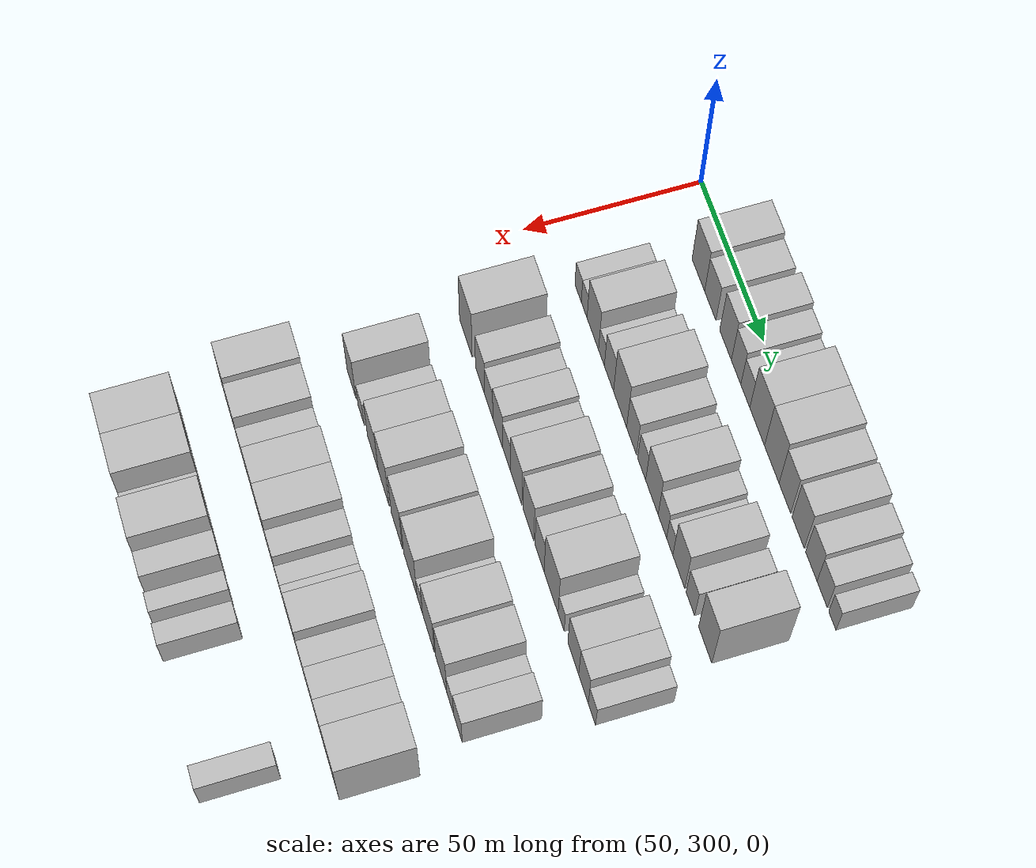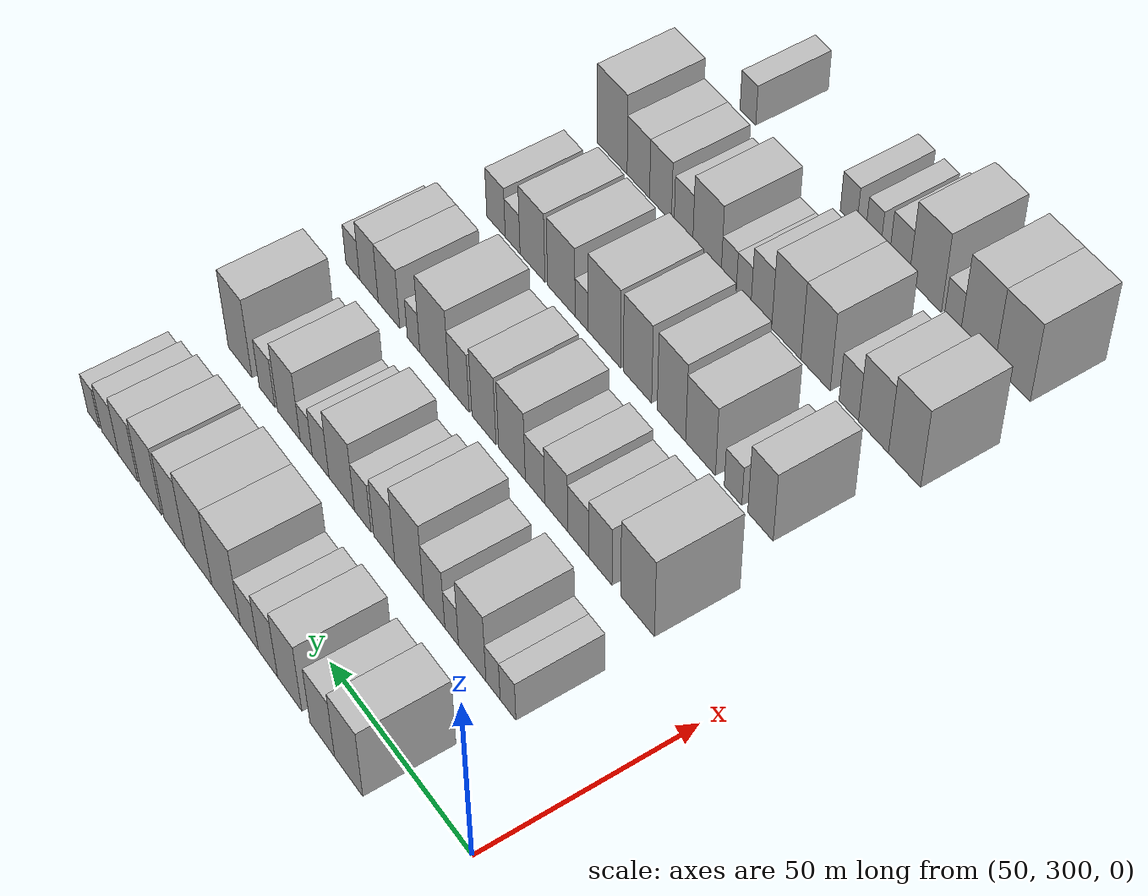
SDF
<sdf version="1.6">
 <world name="default">
  <model name="building_102">
   <static>1</static>
   <pose>50.0000 326.5491 0 0.000000 0.000000 0.000000</pose>
   <link name="link">
    <pose>0 0 10.50 0 0 0</pose>
    <collision name="collision"><geometry><box><size>20.0000 10.0960 21.0000</size></box></geometry></collision>
    <visual name="visual">
     <cast_shadows>0</cast_shadows>
     <geometry><box><size>20.0000 10.0960 21.0000</size></box></geometry>
     <material>
      <script>
       <uri>model://HANNAS_wall/materials/scripts</uri>
       <uri>model://HANNAS_wall/materials/textures</uri>
       <name>vrc/HANNAS_wall</name>
      </script>
     </material>
    </visual>
   </link>
  </model>
  <model name="building_103">
   <static>1</static>
   <pose>50.0000 336.0889 0 0.000000 0.000000 0.000000</pose>
   <link name="link">
    <pose>0 0 9.00 0 0 0</pose>
    <collision name="collision"><geometry><box><size>20.0000 8.9837 18.0000</size></box></geometry></collision>
    <visual name="visual">
     <cast_shadows>0</cast_shadows>
     <geometry><box><size>20.0000 8.9837 18.0000</size></box></geometry>
     <material>
      <script>
       <uri>model://HANNAS_wall/materials/scripts</uri>
       <uri>model://HANNAS_wall/materials/textures</uri>
       <name>vrc/HANNAS_wall</name>
      </script>
     </material>
    </visual>
   </link>
  </model>
  <model name="building_104">
   <static>1</static>
   <pose>50.0000 348.1323 0 0.000000 0.000000 0.000000</pose>
   <link name="link">
    <pose>0 0 10.50 0 0 0</pose>
    <collision name="collision"><geometry><box><size>20.0000 9.1029 21.0000</size></box></geometry></collision>
    <visual name="visual">
     <cast_shadows>0</cast_shadows>
     <geometry><box><size>20.0000 9.1029 21.0000</size></box></geometry>
     <material>
      <script>
       <uri>model://HANNAS_wall/materials/scripts</uri>
       <uri>model://HANNAS_wall/materials/textures</uri>
       <name>vrc/HANNAS_wall</name>
      </script>
     </material>
    </visual>
   </link>
  </model>
  <model name="building_105">
   <static>1</static>
   <pose>50.0000 356.3373 0 0.000000 0.000000 0.000000</pose>
   <link name="link">
    <pose>0 0 9.00 0 0 0</pose>
    <collision name="collision"><geometry><box><size>20.0000 7.3072 18.0000</size></box></geometry></collision>
    <visual name="visual">
     <cast_shadows>0</cast_shadows>
     <geometry><box><size>20.0000 7.3072 18.0000</size></box></geometry>
     <material>
      <script>
       <uri>model://HANNAS_wall/materials/scripts</uri>
       <uri>model://HANNAS_wall/materials/textures</uri>
       <name>vrc/HANNAS_wall</name>
      </script>
     </material>
    </visual>
   </link>
  </model>
  <model name="building_106">
   <static>1</static>
   <pose>50.0000 363.4598 0 0.000000 0.000000 0.000000</pose>
   <link name="link">
    <pose>0 0 7.50 0 0 0</pose>
    <collision name="collision"><geometry><box><size>20.0000 6.9378 15.0000</size></box></geometry></collision>
    <visual name="visual">
     <cast_shadows>0</cast_shadows>
     <geometry><box><size>20.0000 6.9378 15.0000</size></box></geometry>
     <material>
      <script>
       <uri>model://HANNAS_wall/materials/scripts</uri>
       <uri>model://HANNAS_wall/materials/textures</uri>
       <name>vrc/HANNAS_wall</name>
      </script>
     </material>
    </visual>
   </link>
  </model>
  <model name="building_107">
   <static>1</static>
   <pose>50.0000 372.5028 0 0.000000 0.000000 0.000000</pose>
   <link name="link">
    <pose>0 0 12.00 0 0 0</pose>
    <collision name="collision"><geometry><box><size>20.0000 11.1482 24.0000</size></box></geometry></collision>
    <visual name="visual">
     <cast_shadows>0</cast_shadows>
     <geometry><box><size>20.0000 11.1482 24.0000</size></box></geometry>
     <material>
      <script>
       <uri>model://HANNAS_wall/materials/scripts</uri>
       <uri>model://HANNAS_wall/materials/textures</uri>
       <name>vrc/HANNAS_wall</name>
      </script>
     </material>
    </visual>
   </link>
  </model>
  <model name="building_108">
   <static>1</static>
   <pose>50.0000 383.4992 0 0.000000 0.000000 0.000000</pose>
   <link name="link">
    <pose>0 0 12.00 0 0 0</pose>
    <collision name="collision"><geometry><box><size>20.0000 10.8447 24.0000</size></box></geometry></collision>
    <visual name="visual">
     <cast_shadows>0</cast_shadows>
     <geometry><box><size>20.0000 10.8447 24.0000</size></box></geometry>
     <material>
      <script>
       <uri>model://HANNAS_wall/materials/scripts</uri>
       <uri>model://HANNAS_wall/materials/textures</uri>
       <name>vrc/HANNAS_wall</name>
      </script>
     </material>
    </visual>
   </link>
  </model>
  <model name="building_109">
   <static>1</static>
   <pose>50.0000 393.2216 0 0.000000 0.000000 0.000000</pose>
   <link name="link">
    <pose>0 0 10.50 0 0 0</pose>
    <collision name="collision"><geometry><box><size>20.0000 8.5999 21.0000</size></box></geometry></collision>
    <visual name="visual">
     <cast_shadows>0</cast_shadows>
     <geometry><box><size>20.0000 8.5999 21.0000</size></box></geometry>
     <material>
      <script>
       <uri>model://HANNAS_wall/materials/scripts</uri>
       <uri>model://HANNAS_wall/materials/textures</uri>
       <name>vrc/HANNAS_wall</name>
      </script>
     </material>
    </visual>
   </link>
  </model>
  <model name="building_110">
   <static>1</static>
   <pose>50.0000 402.9620 0 0.000000 0.000000 0.000000</pose>
   <link name="link">
    <pose>0 0 10.50 0 0 0</pose>
    <collision name="collision"><geometry><box><size>20.0000 8.8809 21.0000</size></box></geometry></collision>
    <visual name="visual">
     <cast_shadows>0</cast_shadows>
     <geometry><box><size>20.0000 8.8809 21.0000</size></box></geometry>
     <material>
      <script>
       <uri>model://HANNAS_wall/materials/scripts</uri>
       <uri>model://HANNAS_wall/materials/textures</uri>
       <name>vrc/HANNAS_wall</name>
      </script>
     </material>
    </visual>
   </link>
  </model>
  <model name="building_111">
   <static>1</static>
   <pose>50.0000 412.4803 0 0.000000 0.000000 0.000000</pose>
   <link name="link">
    <pose>0 0 9.00 0 0 0</pose>
    <collision name="collision"><geometry><box><size>20.0000 8.1557 18.0000</size></box></geometry></collision>
    <visual name="visual">
     <cast_shadows>0</cast_shadows>
     <geometry><box><size>20.0000 8.1557 18.0000</size></box></geometry>
     <material>
      <script>
       <uri>model://HANNAS_wall/materials/scripts</uri>
       <uri>model://HANNAS_wall/materials/textures</uri>
       <name>vrc/HANNAS_wall</name>
      </script>
     </material>
    </visual>
   </link>
  </model>
  <model name="building_112">
   <static>1</static>
   <pose>50.0000 420.1968 0 0.000000 0.000000 0.000000</pose>
   <link name="link">
    <pose>0 0 7.50 0 0 0</pose>
    <collision name="collision"><geometry><box><size>20.0000 7.2773 15.0000</size></box></geometry></collision>
    <visual name="visual">
     <cast_shadows>0</cast_shadows>
     <geometry><box><size>20.0000 7.2773 15.0000</size></box></geometry>
     <material>
      <script>
       <uri>model://HANNAS_wall/materials/scripts</uri>
       <uri>model://HANNAS_wall/materials/textures</uri>
       <name>vrc/HANNAS_wall</name>
      </script>
     </material>
    </visual>
   </link>
  </model>
  <model name="building_113">
   <static>1</static>
   <pose>50.0000 427.3865 0 0.000000 0.000000 0.000000</pose>
   <link name="link">
    <pose>0 0 6.00 0 0 0</pose>
    <collision name="collision"><geometry><box><size>20.0000 5.1021 12.0000</size></box></geometry></collision>
    <visual name="visual">
     <cast_shadows>0</cast_shadows>
     <geometry><box><size>20.0000 5.1021 12.0000</size></box></geometry>
     <material>
      <script>
       <uri>model://HANNAS_wall/materials/scripts</uri>
       <uri>model://HANNAS_wall/materials/textures</uri>
       <name>vrc/HANNAS_wall</name>
      </script>
     </material>
    </visual>
   </link>
  </model>
  <model name="building_226">
   <static>1</static>
   <pose>82.0000 322.3989 0 0.000000 0.000000 0.000000</pose>
   <link name="link">
    <pose>0 0 6.00 0 0 0</pose>
    <collision name="collision"><geometry><box><size>20.0000 5.4284 12.0000</size></box></geometry></collision>
    <visual name="visual">
     <cast_shadows>0</cast_shadows>
     <geometry><box><size>20.0000 5.4284 12.0000</size></box></geometry>
     <material>
      <script>
       <uri>model://HANNAS_wall/materials/scripts</uri>
       <uri>model://HANNAS_wall/materials/textures</uri>
       <name>vrc/HANNAS_wall</name>
      </script>
     </material>
    </visual>
   </link>
  </model>
  <model name="building_227">
   <static>1</static>
   <pose>82.0000 327.5775 0 0.000000 0.000000 0.000000</pose>
   <link name="link">
    <pose>0 0 6.00 0 0 0</pose>
    <collision name="collision"><geometry><box><size>20.0000 4.9290 12.0000</size></box></geometry></collision>
    <visual name="visual">
     <cast_shadows>0</cast_shadows>
     <geometry><box><size>20.0000 4.9290 12.0000</size></box></geometry>
     <material>
      <script>
       <uri>model://HANNAS_wall/materials/scripts</uri>
       <uri>model://HANNAS_wall/materials/textures</uri>
       <name>vrc/HANNAS_wall</name>
      </script>
     </material>
    </visual>
   </link>
  </model>
  <model name="building_228">
   <static>1</static>
   <pose>82.0000 334.8814 0 0.000000 0.000000 0.000000</pose>
   <link name="link">
    <pose>0 0 10.50 0 0 0</pose>
    <collision name="collision"><geometry><box><size>20.0000 9.6787 21.0000</size></box></geometry></collision>
    <visual name="visual">
     <cast_shadows>0</cast_shadows>
     <geometry><box><size>20.0000 9.6787 21.0000</size></box></geometry>
     <material>
      <script>
       <uri>model://HANNAS_wall/materials/scripts</uri>
       <uri>model://HANNAS_wall/materials/textures</uri>
       <name>vrc/HANNAS_wall</name>
      </script>
     </material>
    </visual>
   </link>
  </model>
  <model name="building_229">
   <static>1</static>
   <pose>82.0000 342.1639 0 0.000000 0.000000 0.000000</pose>
   <link name="link">
    <pose>0 0 6.00 0 0 0</pose>
    <collision name="collision"><geometry><box><size>20.0000 4.8863 12.0000</size></box></geometry></collision>
    <visual name="visual">
     <cast_shadows>0</cast_shadows>
     <geometry><box><size>20.0000 4.8863 12.0000</size></box></geometry>
     <material>
      <script>
       <uri>model://HANNAS_wall/materials/scripts</uri>
       <uri>model://HANNAS_wall/materials/textures</uri>
       <name>vrc/HANNAS_wall</name>
      </script>
     </material>
    </visual>
   </link>
  </model>
  <model name="building_230">
   <static>1</static>
   <pose>82.0000 348.4104 0 0.000000 0.000000 0.000000</pose>
   <link name="link">
    <pose>0 0 9.00 0 0 0</pose>
    <collision name="collision"><geometry><box><size>20.0000 7.6067 18.0000</size></box></geometry></collision>
    <visual name="visual">
     <cast_shadows>0</cast_shadows>
     <geometry><box><size>20.0000 7.6067 18.0000</size></box></geometry>
     <material>
      <script>
       <uri>model://HANNAS_wall/materials/scripts</uri>
       <uri>model://HANNAS_wall/materials/textures</uri>
       <name>vrc/HANNAS_wall</name>
      </script>
     </material>
    </visual>
   </link>
  </model>
  <model name="building_231">
   <static>1</static>
   <pose>82.0000 357.5884 0 0.000000 0.000000 0.000000</pose>
   <link name="link">
    <pose>0 0 12.00 0 0 0</pose>
    <collision name="collision"><geometry><box><size>20.0000 10.7494 24.0000</size></box></geometry></collision>
    <visual name="visual">
     <cast_shadows>0</cast_shadows>
     <geometry><box><size>20.0000 10.7494 24.0000</size></box></geometry>
     <material>
      <script>
       <uri>model://HANNAS_wall/materials/scripts</uri>
       <uri>model://HANNAS_wall/materials/textures</uri>
       <name>vrc/HANNAS_wall</name>
      </script>
     </material>
    </visual>
   </link>
  </model>
  <model name="building_232">
   <static>1</static>
   <pose>82.0000 366.9246 0 0.000000 0.000000 0.000000</pose>
   <link name="link">
    <pose>0 0 9.00 0 0 0</pose>
    <collision name="collision"><geometry><box><size>20.0000 7.9230 18.0000</size></box></geometry></collision>
    <visual name="visual">
     <cast_shadows>0</cast_shadows>
     <geometry><box><size>20.0000 7.9230 18.0000</size></box></geometry>
     <material>
      <script>
       <uri>model://HANNAS_wall/materials/scripts</uri>
       <uri>model://HANNAS_wall/materials/textures</uri>
       <name>vrc/HANNAS_wall</name>
      </script>
     </material>
    </visual>
   </link>
  </model>
  <model name="building_233">
   <static>1</static>
   <pose>82.0000 375.0705 0 0.000000 0.000000 0.000000</pose>
   <link name="link">
    <pose>0 0 7.50 0 0 0</pose>
    <collision name="collision"><geometry><box><size>20.0000 6.3689 15.0000</size></box></geometry></collision>
    <visual name="visual">
     <cast_shadows>0</cast_shadows>
     <geometry><box><size>20.0000 6.3689 15.0000</size></box></geometry>
     <material>
      <script>
       <uri>model://HANNAS_wall/materials/scripts</uri>
       <uri>model://HANNAS_wall/materials/textures</uri>
       <name>vrc/HANNAS_wall</name>
      </script>
     </material>
    </visual>
   </link>
  </model>
  <model name="building_234">
   <static>1</static>
   <pose>82.0000 383.1934 0 0.000000 0.000000 0.000000</pose>
   <link name="link">
    <pose>0 0 10.50 0 0 0</pose>
    <collision name="collision"><geometry><box><size>20.0000 9.8768 21.0000</size></box></geometry></collision>
    <visual name="visual">
     <cast_shadows>0</cast_shadows>
     <geometry><box><size>20.0000 9.8768 21.0000</size></box></geometry>
     <material>
      <script>
       <uri>model://HANNAS_wall/materials/scripts</uri>
       <uri>model://HANNAS_wall/materials/textures</uri>
       <name>vrc/HANNAS_wall</name>
      </script>
     </material>
    </visual>
   </link>
  </model>
  <model name="building_235">
   <static>1</static>
   <pose>82.0000 391.4292 0 0.000000 0.000000 0.000000</pose>
   <link name="link">
    <pose>0 0 7.50 0 0 0</pose>
    <collision name="collision"><geometry><box><size>20.0000 6.5949 15.0000</size></box></geometry></collision>
    <visual name="visual">
     <cast_shadows>0</cast_shadows>
     <geometry><box><size>20.0000 6.5949 15.0000</size></box></geometry>
     <material>
      <script>
       <uri>model://HANNAS_wall/materials/scripts</uri>
       <uri>model://HANNAS_wall/materials/textures</uri>
       <name>vrc/HANNAS_wall</name>
      </script>
     </material>
    </visual>
   </link>
  </model>
  <model name="building_236">
   <static>1</static>
   <pose>82.0000 397.1360 0 0.000000 0.000000 0.000000</pose>
   <link name="link">
    <pose>0 0 6.00 0 0 0</pose>
    <collision name="collision"><geometry><box><size>20.0000 4.8186 12.0000</size></box></geometry></collision>
    <visual name="visual">
     <cast_shadows>0</cast_shadows>
     <geometry><box><size>20.0000 4.8186 12.0000</size></box></geometry>
     <material>
      <script>
       <uri>model://HANNAS_wall/materials/scripts</uri>
       <uri>model://HANNAS_wall/materials/textures</uri>
       <name>vrc/HANNAS_wall</name>
      </script>
     </material>
    </visual>
   </link>
  </model>
  <model name="building_237">
   <static>1</static>
   <pose>82.0000 404.1412 0 0.000000 0.000000 0.000000</pose>
   <link name="link">
    <pose>0 0 10.50 0 0 0</pose>
    <collision name="collision"><geometry><box><size>20.0000 9.1918 21.0000</size></box></geometry></collision>
    <visual name="visual">
     <cast_shadows>0</cast_shadows>
     <geometry><box><size>20.0000 9.1918 21.0000</size></box></geometry>
     <material>
      <script>
       <uri>model://HANNAS_wall/materials/scripts</uri>
       <uri>model://HANNAS_wall/materials/textures</uri>
       <name>vrc/HANNAS_wall</name>
      </script>
     </material>
    </visual>
   </link>
  </model>
  <model name="building_238">
   <static>1</static>
   <pose>82.0000 412.9667 0 0.000000 0.000000 0.000000</pose>
   <link name="link">
    <pose>0 0 7.50 0 0 0</pose>
    <collision name="collision"><geometry><box><size>20.0000 6.4592 15.0000</size></box></geometry></collision>
    <visual name="visual">
     <cast_shadows>0</cast_shadows>
     <geometry><box><size>20.0000 6.4592 15.0000</size></box></geometry>
     <material>
      <script>
       <uri>model://HANNAS_wall/materials/scripts</uri>
       <uri>model://HANNAS_wall/materials/textures</uri>
       <name>vrc/HANNAS_wall</name>
      </script>
     </material>
    </visual>
   </link>
  </model>
  <model name="building_239">
   <static>1</static>
   <pose>82.0000 424.1337 0 0.000000 0.000000 0.000000</pose>
   <link name="link">
    <pose>0 0 12.00 0 0 0</pose>
    <collision name="collision"><geometry><box><size>20.0000 9.8748 24.0000</size></box></geometry></collision>
    <visual name="visual">
     <cast_shadows>0</cast_shadows>
     <geometry><box><size>20.0000 9.8748 24.0000</size></box></geometry>
     <material>
      <script>
       <uri>model://HANNAS_wall/materials/scripts</uri>
       <uri>model://HANNAS_wall/materials/textures</uri>
       <name>vrc/HANNAS_wall</name>
      </script>
     </material>
    </visual>
   </link>
  </model>
  <model name="building_347">
   <static>1</static>
   <pose>114.0000 326.4258 0 0.000000 0.000000 0.000000</pose>
   <link name="link">
    <pose>0 0 12.00 0 0 0</pose>
    <collision name="collision"><geometry><box><size>20.0000 11.3990 24.0000</size></box></geometry></collision>
    <visual name="visual">
     <cast_shadows>0</cast_shadows>
     <geometry><box><size>20.0000 11.3990 24.0000</size></box></geometry>
     <material>
      <script>
       <uri>model://HANNAS_wall/materials/scripts</uri>
       <uri>model://HANNAS_wall/materials/textures</uri>
       <name>vrc/HANNAS_wall</name>
      </script>
     </material>
    </visual>
   </link>
  </model>
  <model name="building_348">
   <static>1</static>
   <pose>114.0000 339.1375 0 0.000000 0.000000 0.000000</pose>
   <link name="link">
    <pose>0 0 9.00 0 0 0</pose>
    <collision name="collision"><geometry><box><size>20.0000 8.0242 18.0000</size></box></geometry></collision>
    <visual name="visual">
     <cast_shadows>0</cast_shadows>
     <geometry><box><size>20.0000 8.0242 18.0000</size></box></geometry>
     <material>
      <script>
       <uri>model://HANNAS_wall/materials/scripts</uri>
       <uri>model://HANNAS_wall/materials/textures</uri>
       <name>vrc/HANNAS_wall</name>
      </script>
     </material>
    </visual>
   </link>
  </model>
  <model name="building_349">
   <static>1</static>
   <pose>114.0000 346.8334 0 0.000000 0.000000 0.000000</pose>
   <link name="link">
    <pose>0 0 7.50 0 0 0</pose>
    <collision name="collision"><geometry><box><size>20.0000 7.3677 15.0000</size></box></geometry></collision>
    <visual name="visual">
     <cast_shadows>0</cast_shadows>
     <geometry><box><size>20.0000 7.3677 15.0000</size></box></geometry>
     <material>
      <script>
       <uri>model://HANNAS_wall/materials/scripts</uri>
       <uri>model://HANNAS_wall/materials/textures</uri>
       <name>vrc/HANNAS_wall</name>
      </script>
     </material>
    </visual>
   </link>
  </model>
  <model name="building_350">
   <static>1</static>
   <pose>114.0000 354.6330 0 0.000000 0.000000 0.000000</pose>
   <link name="link">
    <pose>0 0 9.00 0 0 0</pose>
    <collision name="collision"><geometry><box><size>20.0000 8.2316 18.0000</size></box></geometry></collision>
    <visual name="visual">
     <cast_shadows>0</cast_shadows>
     <geometry><box><size>20.0000 8.2316 18.0000</size></box></geometry>
     <material>
      <script>
       <uri>model://HANNAS_wall/materials/scripts</uri>
       <uri>model://HANNAS_wall/materials/textures</uri>
       <name>vrc/HANNAS_wall</name>
      </script>
     </material>
    </visual>
   </link>
  </model>
  <model name="building_351">
   <static>1</static>
   <pose>114.0000 362.2868 0 0.000000 0.000000 0.000000</pose>
   <link name="link">
    <pose>0 0 7.50 0 0 0</pose>
    <collision name="collision"><geometry><box><size>20.0000 7.0759 15.0000</size></box></geometry></collision>
    <visual name="visual">
     <cast_shadows>0</cast_shadows>
     <geometry><box><size>20.0000 7.0759 15.0000</size></box></geometry>
     <material>
      <script>
       <uri>model://HANNAS_wall/materials/scripts</uri>
       <uri>model://HANNAS_wall/materials/textures</uri>
       <name>vrc/HANNAS_wall</name>
      </script>
     </material>
    </visual>
   </link>
  </model>
  <model name="building_352">
   <static>1</static>
   <pose>114.0000 370.7213 0 0.000000 0.000000 0.000000</pose>
   <link name="link">
    <pose>0 0 10.50 0 0 0</pose>
    <collision name="collision"><geometry><box><size>20.0000 9.7930 21.0000</size></box></geometry></collision>
    <visual name="visual">
     <cast_shadows>0</cast_shadows>
     <geometry><box><size>20.0000 9.7930 21.0000</size></box></geometry>
     <material>
      <script>
       <uri>model://HANNAS_wall/materials/scripts</uri>
       <uri>model://HANNAS_wall/materials/textures</uri>
       <name>vrc/HANNAS_wall</name>
      </script>
     </material>
    </visual>
   </link>
  </model>
  <model name="building_353">
   <static>1</static>
   <pose>114.0000 381.1467 0 0.000000 0.000000 0.000000</pose>
   <link name="link">
    <pose>0 0 10.50 0 0 0</pose>
    <collision name="collision"><geometry><box><size>20.0000 9.0579 21.0000</size></box></geometry></collision>
    <visual name="visual">
     <cast_shadows>0</cast_shadows>
     <geometry><box><size>20.0000 9.0579 21.0000</size></box></geometry>
     <material>
      <script>
       <uri>model://HANNAS_wall/materials/scripts</uri>
       <uri>model://HANNAS_wall/materials/textures</uri>
       <name>vrc/HANNAS_wall</name>
      </script>
     </material>
    </visual>
   </link>
  </model>
  <model name="building_354">
   <static>1</static>
   <pose>114.0000 390.4875 0 0.000000 0.000000 0.000000</pose>
   <link name="link">
    <pose>0 0 9.00 0 0 0</pose>
    <collision name="collision"><geometry><box><size>20.0000 7.6237 18.0000</size></box></geometry></collision>
    <visual name="visual">
     <cast_shadows>0</cast_shadows>
     <geometry><box><size>20.0000 7.6237 18.0000</size></box></geometry>
     <material>
      <script>
       <uri>model://HANNAS_wall/materials/scripts</uri>
       <uri>model://HANNAS_wall/materials/textures</uri>
       <name>vrc/HANNAS_wall</name>
      </script>
     </material>
    </visual>
   </link>
  </model>
  <model name="building_355">
   <static>1</static>
   <pose>114.0000 400.0284 0 0.000000 0.000000 0.000000</pose>
   <link name="link">
    <pose>0 0 12.00 0 0 0</pose>
    <collision name="collision"><geometry><box><size>20.0000 11.4580 24.0000</size></box></geometry></collision>
    <visual name="visual">
     <cast_shadows>0</cast_shadows>
     <geometry><box><size>20.0000 11.4580 24.0000</size></box></geometry>
     <material>
      <script>
       <uri>model://HANNAS_wall/materials/scripts</uri>
       <uri>model://HANNAS_wall/materials/textures</uri>
       <name>vrc/HANNAS_wall</name>
      </script>
     </material>
    </visual>
   </link>
  </model>
  <model name="building_356">
   <static>1</static>
   <pose>114.0000 408.2292 0 0.000000 0.000000 0.000000</pose>
   <link name="link">
    <pose>0 0 6.00 0 0 0</pose>
    <collision name="collision"><geometry><box><size>20.0000 4.9436 12.0000</size></box></geometry></collision>
    <visual name="visual">
     <cast_shadows>0</cast_shadows>
     <geometry><box><size>20.0000 4.9436 12.0000</size></box></geometry>
     <material>
      <script>
       <uri>model://HANNAS_wall/materials/scripts</uri>
       <uri>model://HANNAS_wall/materials/textures</uri>
       <name>vrc/HANNAS_wall</name>
      </script>
     </material>
    </visual>
   </link>
  </model>
  <model name="building_357">
   <static>1</static>
   <pose>114.0000 418.0266 0 0.000000 0.000000 0.000000</pose>
   <link name="link">
    <pose>0 0 9.00 0 0 0</pose>
    <collision name="collision"><geometry><box><size>20.0000 8.6513 18.0000</size></box></geometry></collision>
    <visual name="visual">
     <cast_shadows>0</cast_shadows>
     <geometry><box><size>20.0000 8.6513 18.0000</size></box></geometry>
     <material>
      <script>
       <uri>model://HANNAS_wall/materials/scripts</uri>
       <uri>model://HANNAS_wall/materials/textures</uri>
       <name>vrc/HANNAS_wall</name>
      </script>
     </material>
    </visual>
   </link>
  </model>
  <model name="building_358">
   <static>1</static>
   <pose>114.0000 426.1419 0 0.000000 0.000000 0.000000</pose>
   <link name="link">
    <pose>0 0 9.00 0 0 0</pose>
    <collision name="collision"><geometry><box><size>20.0000 7.5791 18.0000</size></box></geometry></collision>
    <visual name="visual">
     <cast_shadows>0</cast_shadows>
     <geometry><box><size>20.0000 7.5791 18.0000</size></box></geometry>
     <material>
      <script>
       <uri>model://HANNAS_wall/materials/scripts</uri>
       <uri>model://HANNAS_wall/materials/textures</uri>
       <name>vrc/HANNAS_wall</name>
      </script>
     </material>
    </visual>
   </link>
  </model>
  <model name="building_359">
   <static>1</static>
   <pose>114.0000 432.7750 0 0.000000 0.000000 0.000000</pose>
   <link name="link">
    <pose>0 0 6.00 0 0 0</pose>
    <collision name="collision"><geometry><box><size>20.0000 5.6871 12.0000</size></box></geometry></collision>
    <visual name="visual">
     <cast_shadows>0</cast_shadows>
     <geometry><box><size>20.0000 5.6871 12.0000</size></box></geometry>
     <material>
      <script>
       <uri>model://HANNAS_wall/materials/scripts</uri>
       <uri>model://HANNAS_wall/materials/textures</uri>
       <name>vrc/HANNAS_wall</name>
      </script>
     </material>
    </visual>
   </link>
  </model>
  <model name="building_467">
   <static>1</static>
   <pose>146.0000 330.5408 0 0.000000 0.000000 0.000000</pose>
   <link name="link">
    <pose>0 0 10.50 0 0 0</pose>
    <collision name="collision"><geometry><box><size>20.0000 8.4763 21.0000</size></box></geometry></collision>
    <visual name="visual">
     <cast_shadows>0</cast_shadows>
     <geometry><box><size>20.0000 8.4763 21.0000</size></box></geometry>
     <material>
      <script>
       <uri>model://HANNAS_wall/materials/scripts</uri>
       <uri>model://HANNAS_wall/materials/textures</uri>
       <name>vrc/HANNAS_wall</name>
      </script>
     </material>
    </visual>
   </link>
  </model>
  <model name="building_468">
   <static>1</static>
   <pose>146.0000 339.7498 0 0.000000 0.000000 0.000000</pose>
   <link name="link">
    <pose>0 0 6.00 0 0 0</pose>
    <collision name="collision"><geometry><box><size>20.0000 5.9417 12.0000</size></box></geometry></collision>
    <visual name="visual">
     <cast_shadows>0</cast_shadows>
     <geometry><box><size>20.0000 5.9417 12.0000</size></box></geometry>
     <material>
      <script>
       <uri>model://HANNAS_wall/materials/scripts</uri>
       <uri>model://HANNAS_wall/materials/textures</uri>
       <name>vrc/HANNAS_wall</name>
      </script>
     </material>
    </visual>
   </link>
  </model>
  <model name="building_469">
   <static>1</static>
   <pose>146.0000 350.9062 0 0.000000 0.000000 0.000000</pose>
   <link name="link">
    <pose>0 0 10.50 0 0 0</pose>
    <collision name="collision"><geometry><box><size>20.0000 10.3711 21.0000</size></box></geometry></collision>
    <visual name="visual">
     <cast_shadows>0</cast_shadows>
     <geometry><box><size>20.0000 10.3711 21.0000</size></box></geometry>
     <material>
      <script>
       <uri>model://HANNAS_wall/materials/scripts</uri>
       <uri>model://HANNAS_wall/materials/textures</uri>
       <name>vrc/HANNAS_wall</name>
      </script>
     </material>
    </visual>
   </link>
  </model>
  <model name="building_470">
   <static>1</static>
   <pose>146.0000 361.0883 0 0.000000 0.000000 0.000000</pose>
   <link name="link">
    <pose>0 0 12.00 0 0 0</pose>
    <collision name="collision"><geometry><box><size>20.0000 9.9930 24.0000</size></box></geometry></collision>
    <visual name="visual">
     <cast_shadows>0</cast_shadows>
     <geometry><box><size>20.0000 9.9930 24.0000</size></box></geometry>
     <material>
      <script>
       <uri>model://HANNAS_wall/materials/scripts</uri>
       <uri>model://HANNAS_wall/materials/textures</uri>
       <name>vrc/HANNAS_wall</name>
      </script>
     </material>
    </visual>
   </link>
  </model>
  <model name="building_471">
   <static>1</static>
   <pose>146.0000 373.1874 0 0.000000 0.000000 0.000000</pose>
   <link name="link">
    <pose>0 0 12.00 0 0 0</pose>
    <collision name="collision"><geometry><box><size>20.0000 10.2052 24.0000</size></box></geometry></collision>
    <visual name="visual">
     <cast_shadows>0</cast_shadows>
     <geometry><box><size>20.0000 10.2052 24.0000</size></box></geometry>
     <material>
      <script>
       <uri>model://HANNAS_wall/materials/scripts</uri>
       <uri>model://HANNAS_wall/materials/textures</uri>
       <name>vrc/HANNAS_wall</name>
      </script>
     </material>
    </visual>
   </link>
  </model>
  <model name="building_472">
   <static>1</static>
   <pose>146.0000 385.2559 0 0.000000 0.000000 0.000000</pose>
   <link name="link">
    <pose>0 0 12.00 0 0 0</pose>
    <collision name="collision"><geometry><box><size>20.0000 11.9317 24.0000</size></box></geometry></collision>
    <visual name="visual">
     <cast_shadows>0</cast_shadows>
     <geometry><box><size>20.0000 11.9317 24.0000</size></box></geometry>
     <material>
      <script>
       <uri>model://HANNAS_wall/materials/scripts</uri>
       <uri>model://HANNAS_wall/materials/textures</uri>
       <name>vrc/HANNAS_wall</name>
      </script>
     </material>
    </visual>
   </link>
  </model>
  <model name="building_473">
   <static>1</static>
   <pose>146.0000 393.6597 0 0.000000 0.000000 0.000000</pose>
   <link name="link">
    <pose>0 0 6.00 0 0 0</pose>
    <collision name="collision"><geometry><box><size>20.0000 4.8759 12.0000</size></box></geometry></collision>
    <visual name="visual">
     <cast_shadows>0</cast_shadows>
     <geometry><box><size>20.0000 4.8759 12.0000</size></box></geometry>
     <material>
      <script>
       <uri>model://HANNAS_wall/materials/scripts</uri>
       <uri>model://HANNAS_wall/materials/textures</uri>
       <name>vrc/HANNAS_wall</name>
      </script>
     </material>
    </visual>
   </link>
  </model>
  <model name="building_474">
   <static>1</static>
   <pose>146.0000 401.3381 0 0.000000 0.000000 0.000000</pose>
   <link name="link">
    <pose>0 0 10.50 0 0 0</pose>
    <collision name="collision"><geometry><box><size>20.0000 10.4809 21.0000</size></box></geometry></collision>
    <visual name="visual">
     <cast_shadows>0</cast_shadows>
     <geometry><box><size>20.0000 10.4809 21.0000</size></box></geometry>
     <material>
      <script>
       <uri>model://HANNAS_wall/materials/scripts</uri>
       <uri>model://HANNAS_wall/materials/textures</uri>
       <name>vrc/HANNAS_wall</name>
      </script>
     </material>
    </visual>
   </link>
  </model>
  <model name="building_475">
   <static>1</static>
   <pose>146.0000 412.4077 0 0.000000 0.000000 0.000000</pose>
   <link name="link">
    <pose>0 0 10.50 0 0 0</pose>
    <collision name="collision"><geometry><box><size>20.0000 9.6583 21.0000</size></box></geometry></collision>
    <visual name="visual">
     <cast_shadows>0</cast_shadows>
     <geometry><box><size>20.0000 9.6583 21.0000</size></box></geometry>
     <material>
      <script>
       <uri>model://HANNAS_wall/materials/scripts</uri>
       <uri>model://HANNAS_wall/materials/textures</uri>
       <name>vrc/HANNAS_wall</name>
      </script>
     </material>
    </visual>
   </link>
  </model>
  <model name="building_476">
   <static>1</static>
   <pose>146.0000 420.1413 0 0.000000 0.000000 0.000000</pose>
   <link name="link">
    <pose>0 0 6.00 0 0 0</pose>
    <collision name="collision"><geometry><box><size>20.0000 5.8089 12.0000</size></box></geometry></collision>
    <visual name="visual">
     <cast_shadows>0</cast_shadows>
     <geometry><box><size>20.0000 5.8089 12.0000</size></box></geometry>
     <material>
      <script>
       <uri>model://HANNAS_wall/materials/scripts</uri>
       <uri>model://HANNAS_wall/materials/textures</uri>
       <name>vrc/HANNAS_wall</name>
      </script>
     </material>
    </visual>
   </link>
  </model>
  <model name="building_477">
   <static>1</static>
   <pose>146.0000 426.7050 0 0.000000 0.000000 0.000000</pose>
   <link name="link">
    <pose>0 0 7.50 0 0 0</pose>
    <collision name="collision"><geometry><box><size>20.0000 7.3185 15.0000</size></box></geometry></collision>
    <visual name="visual">
     <cast_shadows>0</cast_shadows>
     <geometry><box><size>20.0000 7.3185 15.0000</size></box></geometry>
     <material>
      <script>
       <uri>model://HANNAS_wall/materials/scripts</uri>
       <uri>model://HANNAS_wall/materials/textures</uri>
       <name>vrc/HANNAS_wall</name>
      </script>
     </material>
    </visual>
   </link>
  </model>
  <model name="building_588">
   <static>1</static>
   <pose>178.0000 325.8207 0 0.000000 0.000000 0.000000</pose>
   <link name="link">
    <pose>0 0 12.00 0 0 0</pose>
    <collision name="collision"><geometry><box><size>20.0000 10.4327 24.0000</size></box></geometry></collision>
    <visual name="visual">
     <cast_shadows>0</cast_shadows>
     <geometry><box><size>20.0000 10.4327 24.0000</size></box></geometry>
     <material>
      <script>
       <uri>model://HANNAS_wall/materials/scripts</uri>
       <uri>model://HANNAS_wall/materials/textures</uri>
       <name>vrc/HANNAS_wall</name>
      </script>
     </material>
    </visual>
   </link>
  </model>
  <model name="building_589">
   <static>1</static>
   <pose>178.0000 335.9550 0 0.000000 0.000000 0.000000</pose>
   <link name="link">
    <pose>0 0 10.50 0 0 0</pose>
    <collision name="collision"><geometry><box><size>20.0000 9.8361 21.0000</size></box></geometry></collision>
    <visual name="visual">
     <cast_shadows>0</cast_shadows>
     <geometry><box><size>20.0000 9.8361 21.0000</size></box></geometry>
     <material>
      <script>
       <uri>model://HANNAS_wall/materials/scripts</uri>
       <uri>model://HANNAS_wall/materials/textures</uri>
       <name>vrc/HANNAS_wall</name>
      </script>
     </material>
    </visual>
   </link>
  </model>
  <model name="building_590">
   <static>1</static>
   <pose>178.0000 344.1454 0 0.000000 0.000000 0.000000</pose>
   <link name="link">
    <pose>0 0 7.50 0 0 0</pose>
    <collision name="collision"><geometry><box><size>20.0000 6.5445 15.0000</size></box></geometry></collision>
    <visual name="visual">
     <cast_shadows>0</cast_shadows>
     <geometry><box><size>20.0000 6.5445 15.0000</size></box></geometry>
     <material>
      <script>
       <uri>model://HANNAS_wall/materials/scripts</uri>
       <uri>model://HANNAS_wall/materials/textures</uri>
       <name>vrc/HANNAS_wall</name>
      </script>
     </material>
    </visual>
   </link>
  </model>
  <model name="building_591">
   <static>1</static>
   <pose>178.0000 355.4217 0 0.000000 0.000000 0.000000</pose>
   <link name="link">
    <pose>0 0 12.00 0 0 0</pose>
    <collision name="collision"><geometry><box><size>20.0000 10.0081 24.0000</size></box></geometry></collision>
    <visual name="visual">
     <cast_shadows>0</cast_shadows>
     <geometry><box><size>20.0000 10.0081 24.0000</size></box></geometry>
     <material>
      <script>
       <uri>model://HANNAS_wall/materials/scripts</uri>
       <uri>model://HANNAS_wall/materials/textures</uri>
       <name>vrc/HANNAS_wall</name>
      </script>
     </material>
    </visual>
   </link>
  </model>
  <model name="building_592">
   <static>1</static>
   <pose>178.0000 365.5269 0 0.000000 0.000000 0.000000</pose>
   <link name="link">
    <pose>0 0 12.00 0 0 0</pose>
    <collision name="collision"><geometry><box><size>20.0000 10.2025 24.0000</size></box></geometry></collision>
    <visual name="visual">
     <cast_shadows>0</cast_shadows>
     <geometry><box><size>20.0000 10.2025 24.0000</size></box></geometry>
     <material>
      <script>
       <uri>model://HANNAS_wall/materials/scripts</uri>
       <uri>model://HANNAS_wall/materials/textures</uri>
       <name>vrc/HANNAS_wall</name>
      </script>
     </material>
    </visual>
   </link>
  </model>
  <model name="building_593">
   <static>1</static>
   <pose>178.0000 374.2896 0 0.000000 0.000000 0.000000</pose>
   <link name="link">
    <pose>0 0 9.00 0 0 0</pose>
    <collision name="collision"><geometry><box><size>20.0000 7.3228 18.0000</size></box></geometry></collision>
    <visual name="visual">
     <cast_shadows>0</cast_shadows>
     <geometry><box><size>20.0000 7.3228 18.0000</size></box></geometry>
     <material>
      <script>
       <uri>model://HANNAS_wall/materials/scripts</uri>
       <uri>model://HANNAS_wall/materials/textures</uri>
       <name>vrc/HANNAS_wall</name>
      </script>
     </material>
    </visual>
   </link>
  </model>
  <model name="building_594">
   <static>1</static>
   <pose>178.0000 380.5712 0 0.000000 0.000000 0.000000</pose>
   <link name="link">
    <pose>0 0 6.00 0 0 0</pose>
    <collision name="collision"><geometry><box><size>20.0000 5.2406 12.0000</size></box></geometry></collision>
    <visual name="visual">
     <cast_shadows>0</cast_shadows>
     <geometry><box><size>20.0000 5.2406 12.0000</size></box></geometry>
     <material>
      <script>
       <uri>model://HANNAS_wall/materials/scripts</uri>
       <uri>model://HANNAS_wall/materials/textures</uri>
       <name>vrc/HANNAS_wall</name>
      </script>
     </material>
    </visual>
   </link>
  </model>
  <model name="building_595">
   <static>1</static>
   <pose>178.0000 385.9239 0 0.000000 0.000000 0.000000</pose>
   <link name="link">
    <pose>0 0 6.00 0 0 0</pose>
    <collision name="collision"><geometry><box><size>20.0000 5.4647 12.0000</size></box></geometry></collision>
    <visual name="visual">
     <cast_shadows>0</cast_shadows>
     <geometry><box><size>20.0000 5.4647 12.0000</size></box></geometry>
     <material>
      <script>
       <uri>model://HANNAS_wall/materials/scripts</uri>
       <uri>model://HANNAS_wall/materials/textures</uri>
       <name>vrc/HANNAS_wall</name>
      </script>
     </material>
    </visual>
   </link>
  </model>
  <model name="building_596">
   <static>1</static>
   <pose>178.0000 393.8647 0 0.000000 0.000000 0.000000</pose>
   <link name="link">
    <pose>0 0 10.50 0 0 0</pose>
    <collision name="collision"><geometry><box><size>20.0000 10.4171 21.0000</size></box></geometry></collision>
    <visual name="visual">
     <cast_shadows>0</cast_shadows>
     <geometry><box><size>20.0000 10.4171 21.0000</size></box></geometry>
     <material>
      <script>
       <uri>model://HANNAS_wall/materials/scripts</uri>
       <uri>model://HANNAS_wall/materials/textures</uri>
       <name>vrc/HANNAS_wall</name>
      </script>
     </material>
    </visual>
   </link>
  </model>
  <model name="building_597">
   <static>1</static>
   <pose>178.0000 402.5337 0 0.000000 0.000000 0.000000</pose>
   <link name="link">
    <pose>0 0 7.50 0 0 0</pose>
    <collision name="collision"><geometry><box><size>20.0000 6.9209 15.0000</size></box></geometry></collision>
    <visual name="visual">
     <cast_shadows>0</cast_shadows>
     <geometry><box><size>20.0000 6.9209 15.0000</size></box></geometry>
     <material>
      <script>
       <uri>model://HANNAS_wall/materials/scripts</uri>
       <uri>model://HANNAS_wall/materials/textures</uri>
       <name>vrc/HANNAS_wall</name>
      </script>
     </material>
    </visual>
   </link>
  </model>
  <model name="building_598">
   <static>1</static>
   <pose>178.0000 411.1236 0 0.000000 0.000000 0.000000</pose>
   <link name="link">
    <pose>0 0 9.00 0 0 0</pose>
    <collision name="collision"><geometry><box><size>20.0000 8.2589 18.0000</size></box></geometry></collision>
    <visual name="visual">
     <cast_shadows>0</cast_shadows>
     <geometry><box><size>20.0000 8.2589 18.0000</size></box></geometry>
     <material>
      <script>
       <uri>model://HANNAS_wall/materials/scripts</uri>
       <uri>model://HANNAS_wall/materials/textures</uri>
       <name>vrc/HANNAS_wall</name>
      </script>
     </material>
    </visual>
   </link>
  </model>
  <model name="building_599">
   <static>1</static>
   <pose>178.0000 419.5554 0 0.000000 0.000000 0.000000</pose>
   <link name="link">
    <pose>0 0 9.00 0 0 0</pose>
    <collision name="collision"><geometry><box><size>20.0000 8.6047 18.0000</size></box></geometry></collision>
    <visual name="visual">
     <cast_shadows>0</cast_shadows>
     <geometry><box><size>20.0000 8.6047 18.0000</size></box></geometry>
     <material>
      <script>
       <uri>model://HANNAS_wall/materials/scripts</uri>
       <uri>model://HANNAS_wall/materials/textures</uri>
       <name>vrc/HANNAS_wall</name>
      </script>
     </material>
    </visual>
   </link>
  </model>
  <model name="building_600">
   <static>1</static>
   <pose>178.0000 429.6079 0 0.000000 0.000000 0.000000</pose>
   <link name="link">
    <pose>0 0 12.00 0 0 0</pose>
    <collision name="collision"><geometry><box><size>20.0000 11.5004 24.0000</size></box></geometry></collision>
    <visual name="visual">
     <cast_shadows>0</cast_shadows>
     <geometry><box><size>20.0000 11.5004 24.0000</size></box></geometry>
     <material>
      <script>
       <uri>model://HANNAS_wall/materials/scripts</uri>
       <uri>model://HANNAS_wall/materials/textures</uri>
       <name>vrc/HANNAS_wall</name>
      </script>
     </material>
    </visual>
   </link>
  </model>
  <model name="building_701">
   <static>1</static>
   <pose>210.0000 331.1580 0 0.000000 0.000000 0.000000</pose>
   <link name="link">
    <pose>0 0 12.00 0 0 0</pose>
    <collision name="collision"><geometry><box><size>20.0000 11.4222 24.0000</size></box></geometry></collision>
    <visual name="visual">
     <cast_shadows>0</cast_shadows>
     <geometry><box><size>20.0000 11.4222 24.0000</size></box></geometry>
     <material>
      <script>
       <uri>model://HANNAS_wall/materials/scripts</uri>
       <uri>model://HANNAS_wall/materials/textures</uri>
       <name>vrc/HANNAS_wall</name>
      </script>
     </material>
    </visual>
   </link>
  </model>
  <model name="building_702">
   <static>1</static>
   <pose>210.0000 342.4280 0 0.000000 0.000000 0.000000</pose>
   <link name="link">
    <pose>0 0 12.00 0 0 0</pose>
    <collision name="collision"><geometry><box><size>20.0000 11.1178 24.0000</size></box></geometry></collision>
    <visual name="visual">
     <cast_shadows>0</cast_shadows>
     <geometry><box><size>20.0000 11.1178 24.0000</size></box></geometry>
     <material>
      <script>
       <uri>model://HANNAS_wall/materials/scripts</uri>
       <uri>model://HANNAS_wall/materials/textures</uri>
       <name>vrc/HANNAS_wall</name>
      </script>
     </material>
    </visual>
   </link>
  </model>
  <model name="building_703">
   <static>1</static>
   <pose>210.0000 350.7163 0 0.000000 0.000000 0.000000</pose>
   <link name="link">
    <pose>0 0 6.00 0 0 0</pose>
    <collision name="collision"><geometry><box><size>20.0000 5.4590 12.0000</size></box></geometry></collision>
    <visual name="visual">
     <cast_shadows>0</cast_shadows>
     <geometry><box><size>20.0000 5.4590 12.0000</size></box></geometry>
     <material>
      <script>
       <uri>model://HANNAS_wall/materials/scripts</uri>
       <uri>model://HANNAS_wall/materials/textures</uri>
       <name>vrc/HANNAS_wall</name>
      </script>
     </material>
    </visual>
   </link>
  </model>
  <model name="building_704">
   <static>1</static>
   <pose>210.0000 359.9351 0 0.000000 0.000000 0.000000</pose>
   <link name="link">
    <pose>0 0 12.00 0 0 0</pose>
    <collision name="collision"><geometry><box><size>20.0000 10.9787 24.0000</size></box></geometry></collision>
    <visual name="visual">
     <cast_shadows>0</cast_shadows>
     <geometry><box><size>20.0000 10.9787 24.0000</size></box></geometry>
     <material>
      <script>
       <uri>model://HANNAS_wall/materials/scripts</uri>
       <uri>model://HANNAS_wall/materials/textures</uri>
       <name>vrc/HANNAS_wall</name>
      </script>
     </material>
    </visual>
   </link>
  </model>
  <model name="building_705">
   <static>1</static>
   <pose>210.0000 368.8429 0 0.000000 0.000000 0.000000</pose>
   <link name="link">
    <pose>0 0 7.50 0 0 0</pose>
    <collision name="collision"><geometry><box><size>20.0000 6.8368 15.0000</size></box></geometry></collision>
    <visual name="visual">
     <cast_shadows>0</cast_shadows>
     <geometry><box><size>20.0000 6.8368 15.0000</size></box></geometry>
     <material>
      <script>
       <uri>model://HANNAS_wall/materials/scripts</uri>
       <uri>model://HANNAS_wall/materials/textures</uri>
       <name>vrc/HANNAS_wall</name>
      </script>
     </material>
    </visual>
   </link>
  </model>
  <model name="building_706">
   <static>1</static>
   <pose>210.0000 377.8948 0 0.000000 0.000000 0.000000</pose>
   <link name="link">
    <pose>0 0 6.00 0 0 0</pose>
    <collision name="collision"><geometry><box><size>20.0000 5.2670 12.0000</size></box></geometry></collision>
    <visual name="visual">
     <cast_shadows>0</cast_shadows>
     <geometry><box><size>20.0000 5.2670 12.0000</size></box></geometry>
     <material>
      <script>
       <uri>model://HANNAS_wall/materials/scripts</uri>
       <uri>model://HANNAS_wall/materials/textures</uri>
       <name>vrc/HANNAS_wall</name>
      </script>
     </material>
    </visual>
   </link>
  </model>
  <model name="building_707">
   <static>1</static>
   <pose>210.0000 386.4623 0 0.000000 0.000000 0.000000</pose>
   <link name="link">
    <pose>0 0 6.00 0 0 0</pose>
    <collision name="collision"><geometry><box><size>20.0000 5.8680 12.0000</size></box></geometry></collision>
    <visual name="visual">
     <cast_shadows>0</cast_shadows>
     <geometry><box><size>20.0000 5.8680 12.0000</size></box></geometry>
     <material>
      <script>
       <uri>model://HANNAS_wall/materials/scripts</uri>
       <uri>model://HANNAS_wall/materials/textures</uri>
       <name>vrc/HANNAS_wall</name>
      </script>
     </material>
    </visual>
   </link>
  </model>
  <model name="building_708">
   <static>1</static>
   <pose>210.0000 423.3205 0 0.000000 0.000000 0.000000</pose>
   <link name="link">
    <pose>0 0 6.00 0 0 0</pose>
    <collision name="collision"><geometry><box><size>20.0000 5.9495 12.0000</size></box></geometry></collision>
    <visual name="visual">
     <cast_shadows>0</cast_shadows>
     <geometry><box><size>20.0000 5.9495 12.0000</size></box></geometry>
     <material>
      <script>
       <uri>model://HANNAS_wall/materials/scripts</uri>
       <uri>model://HANNAS_wall/materials/textures</uri>
       <name>vrc/HANNAS_wall</name>
      </script>
     </material>
    </visual>
   </link>
  </model>
 </world>
</sdf>
